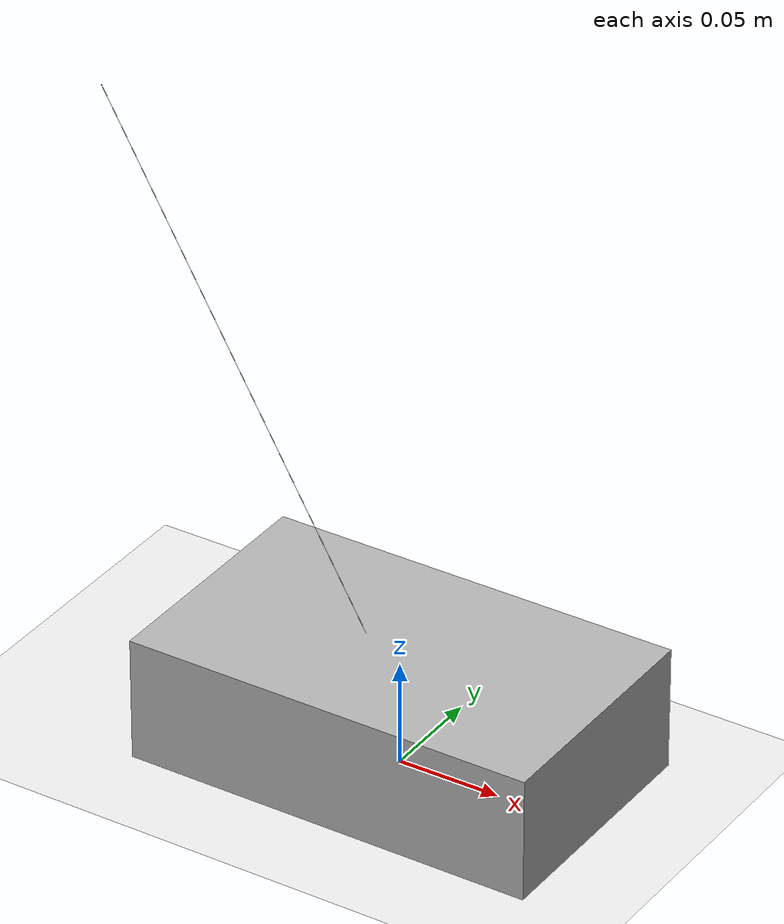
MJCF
<mujoco model="cartpole">
  <compiler angle="radian"/>
  <option timestep="0.001" gravity="0 0 -9.81" integrator="RK4"/>

  <default>
    <joint damping="0" frictionloss="0"/>

    <geom rgba="0.7 0.7 0.7 1"/>
  </default>

  <worldbody>
    <geom type="plane" size="5 5 0.1" rgba="0.93 0.93 0.93 1"/>
    <body name="cart" pos="0 0 0.03">
      <joint name="slide" type="slide" axis="1 0 0"/>
      <geom type="box" size="0.10 0.06 0.03" mass="1"/>
      <body name="pole" pos="0 0 0" euler="0 2.6179939 0">
        <joint name="hinge" type="hinge" axis="0 1 0"/>

        <geom type="capsule" fromto="0 0 0  0 0 -0.3"
              size="0.0001" density="1e-6"
              contype="2" conaffinity="2"/>

        <body name="bob" pos="0 0 -0.3">
          <geom type="sphere" size="0.0002" mass="0.2"
                rgba="0.2 0.2 0.8 1"
                contype="2" conaffinity="2"/>
        </body>
      </body>
    </body>
  </worldbody>

  <actuator>
    <motor name="u" joint="slide" gear="1.0"/>
  </actuator>
</mujoco>
